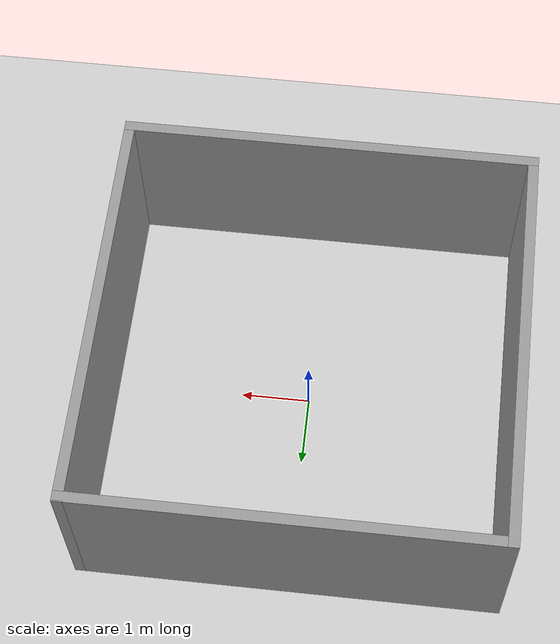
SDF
<?xml version="1.0" ?>
<sdf version="1.7">
  <world name="6_6_room_world">
    <light name='sun' type='directional'>
      <cast_shadows>1</cast_shadows>
      <pose>0 0 10 0 0 0</pose>
      <diffuse>0.8 0.8 0.8 1</diffuse>
      <specular>0.2 0.2 0.2 1</specular>
      <attenuation>
        <range>1000</range>
        <constant>0.9</constant>
        <linear>0.01</linear>
        <quadratic>0.001</quadratic>
      </attenuation>
      <direction>-0.5 0.1 -0.9</direction>
    </light>

    <model name='ground_plane'>
      <static>1</static>
      <link name='link'>
        <collision name='collision'>
          <geometry>
            <plane>
              <normal>0 0 1</normal>
              <size>60 60</size>
            </plane>
          </geometry>
          <surface>
            <friction>
              <ode>
                <mu>1</mu>
                <mu2>1</mu2>
              </ode>
            </friction>
            <bounce>
              <restitution_coefficient>0</restitution_coefficient>
            </bounce>
            <contact>
              <ode>
                <max_vel>0.1</max_vel>
                <min_depth>0.001</min_depth>
              </ode>
            </contact>
          </surface>
        </collision>
        <visual name='visual'>
          <cast_shadows>0</cast_shadows>
          <geometry>
            <plane>
              <normal>0 0 1</normal>
              <size>60 60</size>
            </plane>
          </geometry>
          <material>
            <script>
              <uri>file://media/materials/scripts/gazebo.material</uri>
              <name>Gazebo/Grey</name>
            </script>
          </material>
        </visual>
      </link>
    </model>

    <include>
      <uri>model://6_6_room</uri>
      <pose>0 0 0 0 0 0</pose>
    </include>
  </world>
</sdf>

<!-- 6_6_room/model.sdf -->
<sdf version='1.7'>
  <model name='6_6_room'>
    <pose>0 0 0 0 -0 0</pose>
    <link name='Wall_0'>
      <collision name='Wall_0_Collision'>
        <geometry>
          <box>
            <size>6 0.15 2.5</size>
          </box>
        </geometry>
        <pose>0 0 1.25 0 -0 0</pose>
      </collision>
      <visual name='Wall_0_Visual'>
        <pose>0 0 1.25 0 -0 0</pose>
        <geometry>
          <box>
            <size>6 0.15 2.5</size>
          </box>
        </geometry>
        <material>
          <script>
            <uri>file://media/materials/scripts/gazebo.material</uri>
            <name>Gazebo/Grey</name>
          </script>
          <ambient>1 1 1 1</ambient>
        </material>
        <meta>
          <layer>0</layer>
        </meta>
      </visual>
      <pose>-2.925 0 0 0 -0 -1.5708</pose>
    </link>
    <link name='Wall_1'>
      <collision name='Wall_1_Collision'>
        <geometry>
          <box>
            <size>6 0.15 2.5</size>
          </box>
        </geometry>
        <pose>0 0 1.25 0 -0 0</pose>
      </collision>
      <visual name='Wall_1_Visual'>
        <pose>0 0 1.25 0 -0 0</pose>
        <geometry>
          <box>
            <size>6 0.15 2.5</size>
          </box>
        </geometry>
        <material>
          <script>
            <uri>file://media/materials/scripts/gazebo.material</uri>
            <name>Gazebo/Grey</name>
          </script>
          <ambient>1 1 1 1</ambient>
        </material>
        <meta>
          <layer>0</layer>
        </meta>
      </visual>
      <pose>0 -2.925 0 0 -0 0</pose>
    </link>
    <link name='Wall_2'>
      <collision name='Wall_2_Collision'>
        <geometry>
          <box>
            <size>6 0.15 2.5</size>
          </box>
        </geometry>
        <pose>0 0 1.25 0 -0 0</pose>
      </collision>
      <visual name='Wall_2_Visual'>
        <pose>0 0 1.25 0 -0 0</pose>
        <geometry>
          <box>
            <size>6 0.15 2.5</size>
          </box>
        </geometry>
        <material>
          <script>
            <uri>file://media/materials/scripts/gazebo.material</uri>
            <name>Gazebo/Grey</name>
          </script>
          <ambient>1 1 1 1</ambient>
        </material>
        <meta>
          <layer>0</layer>
        </meta>
      </visual>
      <pose>2.925 0 0 0 -0 1.5708</pose>
    </link>
    <link name='Wall_3'>
      <collision name='Wall_3_Collision'>
        <geometry>
          <box>
            <size>6 0.15 2.5</size>
          </box>
        </geometry>
        <pose>0 0 1.25 0 -0 0</pose>
      </collision>
      <visual name='Wall_3_Visual'>
        <pose>0 0 1.25 0 -0 0</pose>
        <geometry>
          <box>
            <size>6 0.15 2.5</size>
          </box>
        </geometry>
        <material>
          <script>
            <uri>file://media/materials/scripts/gazebo.material</uri>
            <name>Gazebo/Grey</name>
          </script>
          <ambient>1 1 1 1</ambient>
        </material>
        <meta>
          <layer>0</layer>
        </meta>
      </visual>
      <pose>0 2.925 0 0 -0 3.14159</pose>
    </link>
    <static>1</static>
  </model>
</sdf>
